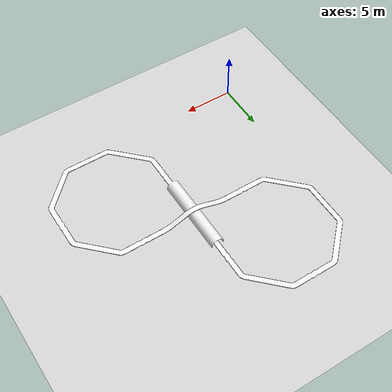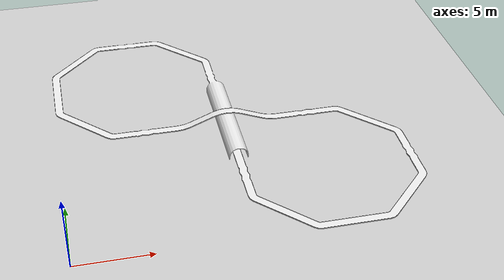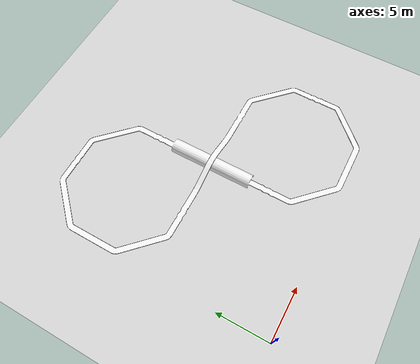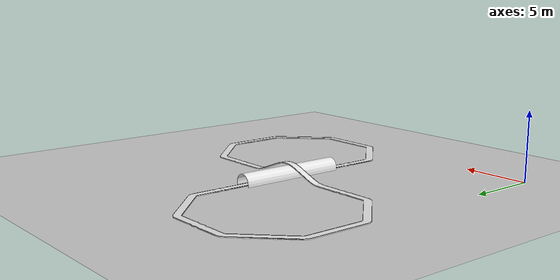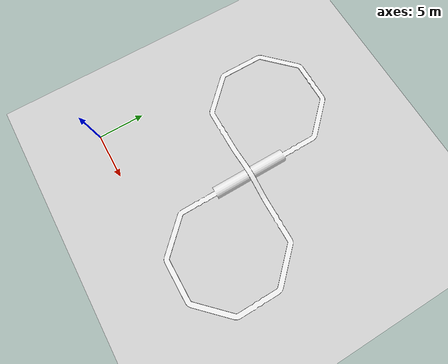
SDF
<?xml version="1.0" ?>
<!--
@author: Benjamin Perseghetti
@email: bperseghetti@rudislabs.com
-->
<sdf version="1.6">
  <world name="nxp">
    <scene>
      <ambient>0.5 0.5 0.5 1</ambient>
      <background>0.15 0.15 0.15 1</background>
      <shadows>1</shadows>
      <sky>
        <clouds>
          <speed>12</speed>
        </clouds>
      </sky>
    </scene>
    <light type="directional" name="sunSolarNoon">
      <cast_shadows>true</cast_shadows>
      <pose>0 0 500 0 0 0</pose>
      <diffuse>0.95 0.95 0.95 1</diffuse>
      <specular>0.3 0.3 0.3 1</specular>
      <attenuation>
        <range>2000</range>
        <constant>1.0</constant>
        <linear>0.0</linear>
        <quadratic>0.0</quadratic>
      </attenuation>
      <direction>-0.01 0.01 -1.0</direction>
    </light>
    <include>
      <uri>model://ground_plane</uri>
    </include>
    <include>
      <uri>model://nxp_raceway_overpass</uri>
    </include>

  </world>
</sdf>

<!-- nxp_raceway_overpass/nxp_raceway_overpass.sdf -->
<sdf version="1.5">
  <model name='nxp_raceway_overpass'>
    <pose>0 0 0 0 0 0</pose>
    <link name='nxp_raceway_overpass_link'>
      <collision name='nxp_raceway_overpass_collision'>
        <geometry>
          <mesh>
            <scale>1 1 1</scale>
            <uri>model://nxp_raceway_overpass/meshes/InfiniteOverpassInsideTunnel.stl</uri>
          </mesh>
        </geometry>
        <pose>0 0 0 0 0 0</pose>
      </collision>
      <visual name='nxp_raceway_overpass_inside_visual'>
        <cast_shadows>0</cast_shadows>
        <pose>0 0 0 0 0 0</pose>
        <geometry>
          <mesh>
            <scale>1 1 1</scale>
            <uri>model://nxp_raceway_overpass/meshes/InfiniteOverpassInsideTunnel.stl</uri>
          </mesh>
        </geometry>
        <material>
          <script>
            <name>Gazebo/White</name>
            <uri>file://media/materials/scripts/gazebo.material</uri>
          </script>
        </material>
      </visual>
      <visual name='nxp_raceway_overpass_border_visual'>
        <cast_shadows>0</cast_shadows>
        <pose>0 0 .02 0 0 0</pose>
        <geometry>
          <mesh>
            <scale>1 1 1</scale>
            <uri>model://nxp_raceway_overpass/meshes/InfiniteOverpassBorder.stl</uri>
          </mesh>
        </geometry>
        <material>
          <script>
            <name>Gazebo/Black</name>
            <uri>file://media/materials/scripts/gazebo.material</uri>
          </script>
        </material>
      </visual>
    </link>
    <static>1</static>
  </model>
</sdf>
